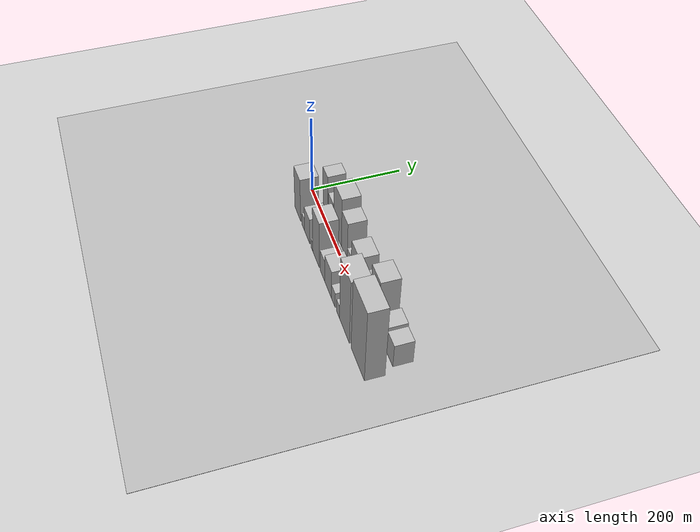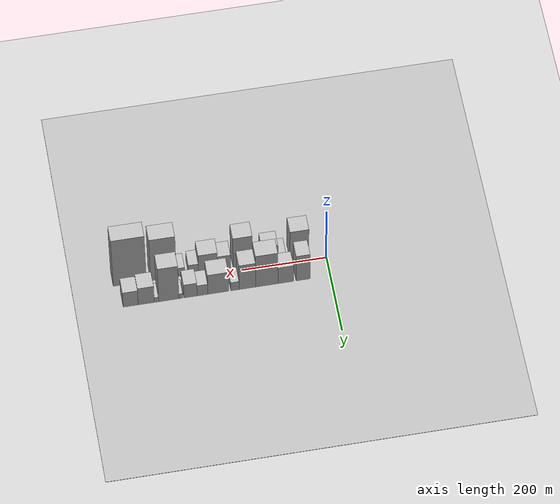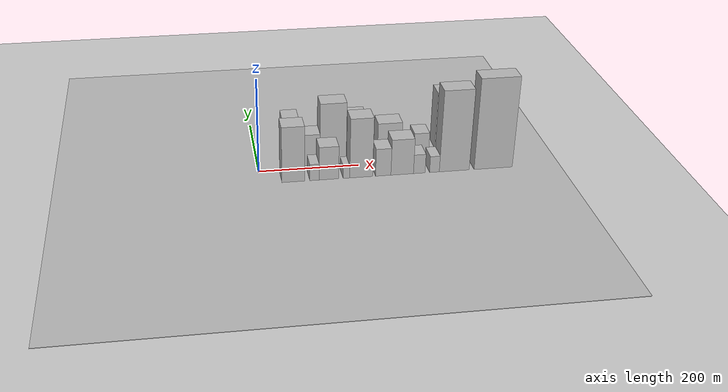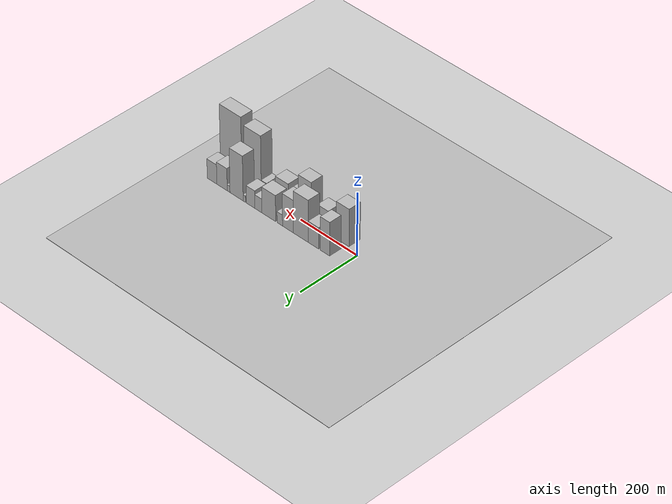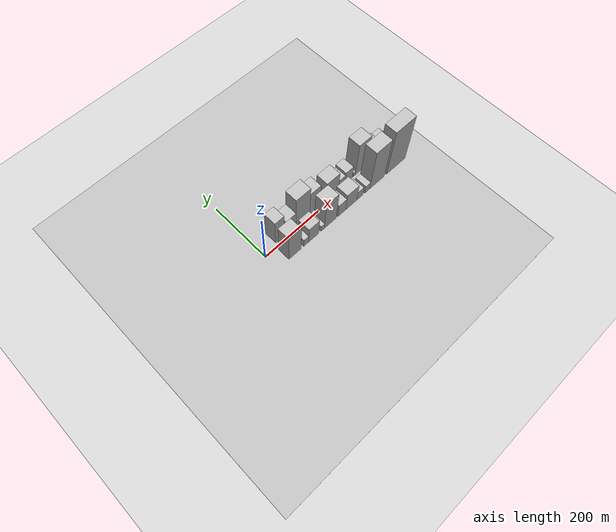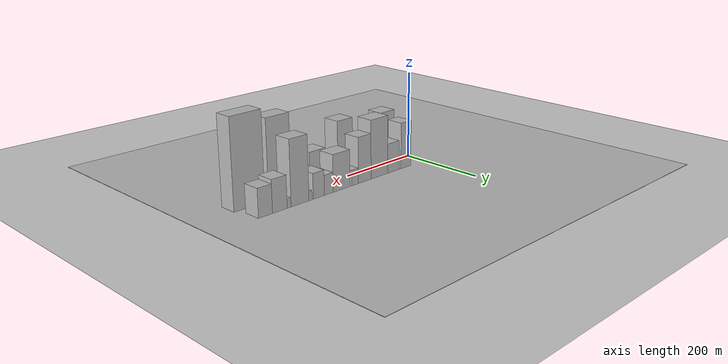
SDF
<?xml version="1.0" encoding="utf-8"?>

<sdf version="1.6">

   <world name="default">

      <gui fullscreen="0">

         <camera name="user_camera">

            <pose>-15 0 4.57585 0 0 0</pose>

            <view_controller>orbit</view_controller>

         </camera>

      </gui>

      <scene>

         <sky>

           <clouds>

             <speed>12</speed>

           </clouds>

         </sky>

         <ambient>0.4 0.4 0.4 1</ambient>

         <background>0.7 0.7 0.7 1</background>

         <shadows>1</shadows>

      </scene>

      <gravity>0 0 -9.8066</gravity>

      <magnetic_field>6e-06 2.3e-05 -4.2e-05</magnetic_field>

      <physics default="0" name="default_physics" type="ode">

         <ode>

            <solver>

               <type>quick</type>

               <iters>10</iters>

               <sor>1.0</sor>

               <use_dynamic_moi_rescaling>0</use_dynamic_moi_rescaling>

            </solver>

            <constraints>

               <cfm>0</cfm>

               <erp>0.2</erp>

               <contact_max_correcting_vel>100</contact_max_correcting_vel>

               <contact_surface_layer>0.001</contact_surface_layer>

            </constraints>

         </ode>

         <max_step_size>0.004</max_step_size>

         <real_time_factor>1</real_time_factor>

         <real_time_update_rate>250</real_time_update_rate>

      </physics>

      <light name="sun" type="directional">

         <cast_shadows>1</cast_shadows>

         <pose>0 0 10 0 0 0</pose>

         <diffuse>0.8 0.8 0.8 1</diffuse>

         <specular>0.2 0.2 0.2 1</specular>

         <attenuation>

            <range>1000</range>

            <constant>0.9</constant>

            <linear>0.01</linear>

            <quadratic>0.001</quadratic>

         </attenuation>

         <direction>-0.5 0.1 -0.9</direction>

      </light>

      <include>

         <name>ground_plane_1</name>

         <uri>model://HANNAS_ground_plane</uri>

         <pose>0 0 0  0 0 0</pose>

      </include>

      <include>

         <name>ground_plane_2</name>

         <uri>model://HANNAS_ground_plane</uri>

         <pose>100 0 0  0 0 0</pose>

      </include>

      <model name="building_1">

         <static>1</static>

         <pose frame="">64.3956 30.0000 0 0.000000 0.000000 1.570796</pose>

         <link name="link">

            <pose frame="">0 0 54.00 0 0 0</pose>

            <collision name="collision">

               <geometry>

                  <box>

                     <size>40.0000 32.7913 108.0000</size>

                  </box>

               </geometry>

               <max_contacts>10</max_contacts>

               <surface>

                  <contact>

                     <ode/>

                  </contact>

                  <bounce/>

                  <friction>

                     <torsional>

                        <ode/>

                     </torsional>

                     <ode/>

                  </friction>

               </surface>

            </collision>

            <visual name="visual">

               <cast_shadows>0</cast_shadows>

               <geometry>

                  <box>

                     <size>40.0000 32.7913 108.0000</size>

                  </box>

               </geometry>

               <material>

                  <script>

                     <uri>model://HANNAS_wall/materials/scripts</uri>

                     <uri>model://HANNAS_wall/materials/textures</uri>

                     <name>vrc/HANNAS_wall</name>

                  </script>

               </material>

            </visual>

            <self_collide>0</self_collide>

            <enable_wind>0</enable_wind>

            <kinematic>0</kinematic>

         </link>

      </model>

      <model name="building_2">

         <static>1</static>

         <pose frame="">105.2554 30.0000 0 0.000000 0.000000 1.570796</pose>

         <link name="link">

            <pose frame="">0 0 34.50 0 0 0</pose>

            <collision name="collision">

               <geometry>

                  <box>

                     <size>40.0000 36.9283 69.0000</size>

                  </box>

               </geometry>

               <max_contacts>10</max_contacts>

               <surface>

                  <contact>

                     <ode/>

                  </contact>

                  <bounce/>

                  <friction>

                     <torsional>

                        <ode/>

                     </torsional>

                     <ode/>

                  </friction>

               </surface>

            </collision>

            <visual name="visual">

               <cast_shadows>0</cast_shadows>

               <geometry>

                  <box>

                     <size>40.0000 36.9283 69.0000</size>

                  </box>

               </geometry>

               <material>

                  <script>

                     <uri>model://HANNAS_wall/materials/scripts</uri>

                     <uri>model://HANNAS_wall/materials/textures</uri>

                     <name>vrc/HANNAS_wall</name>

                  </script>

               </material>

            </visual>

            <self_collide>0</self_collide>

            <enable_wind>0</enable_wind>

            <kinematic>0</kinematic>

         </link>

      </model>

      <model name="building_3">

         <static>1</static>

         <pose frame="">150.1064 30.0000 0 0.000000 0.000000 1.570796</pose>

         <link name="link">

            <pose frame="">0 0 67.50 0 0 0</pose>

            <collision name="collision">

               <geometry>

                  <box>

                     <size>40.0000 52.7737 135.0000</size>

                  </box>

               </geometry>

               <max_contacts>10</max_contacts>

               <surface>

                  <contact>

                     <ode/>

                  </contact>

                  <bounce/>

                  <friction>

                     <torsional>

                        <ode/>

                     </torsional>

                     <ode/>

                  </friction>

               </surface>

            </collision>

            <visual name="visual">

               <cast_shadows>0</cast_shadows>

               <geometry>

                  <box>

                     <size>40.0000 52.7737 135.0000</size>

                  </box>

               </geometry>

               <material>

                  <script>

                     <uri>model://HANNAS_wall/materials/scripts</uri>

                     <uri>model://HANNAS_wall/materials/textures</uri>

                     <name>vrc/HANNAS_wall</name>

                  </script>

               </material>

            </visual>

            <self_collide>0</self_collide>

            <enable_wind>0</enable_wind>

            <kinematic>0</kinematic>

         </link>

      </model>

      <model name="building_4">

         <static>1</static>

         <pose frame="">195.9589 30.0000 0 0.000000 0.000000 1.570796</pose>

         <link name="link">

            <pose frame="">0 0 52.50 0 0 0</pose>

            <collision name="collision">

               <geometry>

                  <box>

                     <size>40.0000 38.9315 105.0000</size>

                  </box>

               </geometry>

               <max_contacts>10</max_contacts>

               <surface>

                  <contact>

                     <ode/>

                  </contact>

                  <bounce/>

                  <friction>

                     <torsional>

                        <ode/>

                     </torsional>

                     <ode/>

                  </friction>

               </surface>

            </collision>

            <visual name="visual">

               <cast_shadows>0</cast_shadows>

               <geometry>

                  <box>

                     <size>40.0000 38.9315 105.0000</size>

                  </box>

               </geometry>

               <material>

                  <script>

                     <uri>model://HANNAS_wall/materials/scripts</uri>

                     <uri>model://HANNAS_wall/materials/textures</uri>

                     <name>vrc/HANNAS_wall</name>

                  </script>

               </material>

            </visual>

            <self_collide>0</self_collide>

            <enable_wind>0</enable_wind>

            <kinematic>0</kinematic>

         </link>

      </model>

      <model name="building_5">

         <static>1</static>

         <pose frame="">225.2437 30.0000 0 0.000000 0.000000 1.570796</pose>

         <link name="link">

            <pose frame="">0 0 18.00 0 0 0</pose>

            <collision name="collision">

               <geometry>

                  <box>

                     <size>40.0000 19.6381 36.0000</size>

                  </box>

               </geometry>

               <max_contacts>10</max_contacts>

               <surface>

                  <contact>

                     <ode/>

                  </contact>

                  <bounce/>

                  <friction>

                     <torsional>

                        <ode/>

                     </torsional>

                     <ode/>

                  </friction>

               </surface>

            </collision>

            <visual name="visual">

               <cast_shadows>0</cast_shadows>

               <geometry>

                  <box>

                     <size>40.0000 19.6381 36.0000</size>

                  </box>

               </geometry>

               <material>

                  <script>

                     <uri>model://HANNAS_wall/materials/scripts</uri>

                     <uri>model://HANNAS_wall/materials/textures</uri>

                     <name>vrc/HANNAS_wall</name>

                  </script>

               </material>

            </visual>

            <self_collide>0</self_collide>

            <enable_wind>0</enable_wind>

            <kinematic>0</kinematic>

         </link>

      </model>

      <model name="building_6">

         <static>1</static>

         <pose frame="">264.6774 30.0000 0 0.000000 0.000000 1.570796</pose>

         <link name="link">

            <pose frame="">0 0 42.00 0 0 0</pose>

            <collision name="collision">

               <geometry>

                  <box>

                     <size>40.0000 49.2292 84.0000</size>

                  </box>

               </geometry>

               <max_contacts>10</max_contacts>

               <surface>

                  <contact>

                     <ode/>

                  </contact>

                  <bounce/>

                  <friction>

                     <torsional>

                        <ode/>

                     </torsional>

                     <ode/>

                  </friction>

               </surface>

            </collision>

            <visual name="visual">

               <cast_shadows>0</cast_shadows>

               <geometry>

                  <box>

                     <size>40.0000 49.2292 84.0000</size>

                  </box>

               </geometry>

               <material>

                  <script>

                     <uri>model://HANNAS_wall/materials/scripts</uri>

                     <uri>model://HANNAS_wall/materials/textures</uri>

                     <name>vrc/HANNAS_wall</name>

                  </script>

               </material>

            </visual>

            <self_collide>0</self_collide>

            <enable_wind>0</enable_wind>

            <kinematic>0</kinematic>

         </link>

      </model>

      <model name="building_7">

         <static>1</static>

         <pose frame="">301.9560 30.0000 0 0.000000 0.000000 1.570796</pose>

         <link name="link">

            <pose frame="">0 0 22.50 0 0 0</pose>

            <collision name="collision">

               <geometry>

                  <box>

                     <size>40.0000 25.3280 45.0000</size>

                  </box>

               </geometry>

               <max_contacts>10</max_contacts>

               <surface>

                  <contact>

                     <ode/>

                  </contact>

                  <bounce/>

                  <friction>

                     <torsional>

                        <ode/>

                     </torsional>

                     <ode/>

                  </friction>

               </surface>

            </collision>

            <visual name="visual">

               <cast_shadows>0</cast_shadows>

               <geometry>

                  <box>

                     <size>40.0000 25.3280 45.0000</size>

                  </box>

               </geometry>

               <material>

                  <script>

                     <uri>model://HANNAS_wall/materials/scripts</uri>

                     <uri>model://HANNAS_wall/materials/textures</uri>

                     <name>vrc/HANNAS_wall</name>

                  </script>

               </material>

            </visual>

            <self_collide>0</self_collide>

            <enable_wind>0</enable_wind>

            <kinematic>0</kinematic>

         </link>

      </model>

      <model name="building_8">

         <static>1</static>

         <pose frame="">330.1537 30.0000 0 0.000000 0.000000 1.570796</pose>

         <link name="link">

            <pose frame="">0 0 28.50 0 0 0</pose>

            <collision name="collision">

               <geometry>

                  <box>

                     <size>40.0000 31.0674 57.0000</size>

                  </box>

               </geometry>

               <max_contacts>10</max_contacts>

               <surface>

                  <contact>

                     <ode/>

                  </contact>

                  <bounce/>

                  <friction>

                     <torsional>

                        <ode/>

                     </torsional>

                     <ode/>

                  </friction>

               </surface>

            </collision>

            <visual name="visual">

               <cast_shadows>0</cast_shadows>

               <geometry>

                  <box>

                     <size>40.0000 31.0674 57.0000</size>

                  </box>

               </geometry>

               <material>

                  <script>

                     <uri>model://HANNAS_wall/materials/scripts</uri>

                     <uri>model://HANNAS_wall/materials/textures</uri>

                     <name>vrc/HANNAS_wall</name>

                  </script>

               </material>

            </visual>

            <self_collide>0</self_collide>

            <enable_wind>0</enable_wind>

            <kinematic>0</kinematic>

         </link>

      </model>

      <model name="building_9">

         <static>1</static>

         <pose frame="">353.0845 30.0000 0 0.000000 0.000000 1.570796</pose>

         <link name="link">

            <pose frame="">0 0 10.50 0 0 0</pose>

            <collision name="collision">

               <geometry>

                  <box>

                     <size>40.0000 8.7943 21.0000</size>

                  </box>

               </geometry>

               <max_contacts>10</max_contacts>

               <surface>

                  <contact>

                     <ode/>

                  </contact>

                  <bounce/>

                  <friction>

                     <torsional>

                        <ode/>

                     </torsional>

                     <ode/>

                  </friction>

               </surface>

            </collision>

            <visual name="visual">

               <cast_shadows>0</cast_shadows>

               <geometry>

                  <box>

                     <size>40.0000 8.7943 21.0000</size>

                  </box>

               </geometry>

               <material>

                  <script>

                     <uri>model://HANNAS_wall/materials/scripts</uri>

                     <uri>model://HANNAS_wall/materials/textures</uri>

                     <name>vrc/HANNAS_wall</name>

                  </script>

               </material>

            </visual>

            <self_collide>0</self_collide>

            <enable_wind>0</enable_wind>

            <kinematic>0</kinematic>

         </link>

      </model>

      <model name="building_10">

         <static>1</static>

         <pose frame="">381.4194 30.0000 0 0.000000 0.000000 1.570796</pose>

         <link name="link">

            <pose frame="">0 0 72.00 0 0 0</pose>

            <collision name="collision">

               <geometry>

                  <box>

                     <size>40.0000 47.8754 144.0000</size>

                  </box>

               </geometry>

               <max_contacts>10</max_contacts>

               <surface>

                  <contact>

                     <ode/>

                  </contact>

                  <bounce/>

                  <friction>

                     <torsional>

                        <ode/>

                     </torsional>

                     <ode/>

                  </friction>

               </surface>

            </collision>

            <visual name="visual">

               <cast_shadows>0</cast_shadows>

               <geometry>

                  <box>

                     <size>40.0000 47.8754 144.0000</size>

                  </box>

               </geometry>

               <material>

                  <script>

                     <uri>model://HANNAS_wall/materials/scripts</uri>

                     <uri>model://HANNAS_wall/materials/textures</uri>

                     <name>vrc/HANNAS_wall</name>

                  </script>

               </material>

            </visual>

            <self_collide>0</self_collide>

            <enable_wind>0</enable_wind>

            <kinematic>0</kinematic>

         </link>

      </model>

      <model name="building_11">

         <static>1</static>

         <pose frame="">410.4542 30.0000 0 0.000000 0.000000 1.570796</pose>

         <link name="link">

            <pose frame="">0 0 10.50 0 0 0</pose>

            <collision name="collision">

               <geometry>

                  <box>

                     <size>40.0000 10.1942 21.0000</size>

                  </box>

               </geometry>

               <max_contacts>10</max_contacts>

               <surface>

                  <contact>

                     <ode/>

                  </contact>

                  <bounce/>

                  <friction>

                     <torsional>

                        <ode/>

                     </torsional>

                     <ode/>

                  </friction>

               </surface>

            </collision>

            <visual name="visual">

               <cast_shadows>0</cast_shadows>

               <geometry>

                  <box>

                     <size>40.0000 10.1942 21.0000</size>

                  </box>

               </geometry>

               <material>

                  <script>

                     <uri>model://HANNAS_wall/materials/scripts</uri>

                     <uri>model://HANNAS_wall/materials/textures</uri>

                     <name>vrc/HANNAS_wall</name>

                  </script>

               </material>

            </visual>

            <self_collide>0</self_collide>

            <enable_wind>0</enable_wind>

            <kinematic>0</kinematic>

         </link>

      </model>

      <model name="building_12">

         <static>1</static>

         <pose frame="">434.4911 30.0000 0 0.000000 0.000000 1.570796</pose>

         <link name="link">

            <pose frame="">0 0 36.00 0 0 0</pose>

            <collision name="collision">

               <geometry>

                  <box>

                     <size>40.0000 37.8795 72.0000</size>

                  </box>

               </geometry>

               <max_contacts>10</max_contacts>

               <surface>

                  <contact>

                     <ode/>

                  </contact>

                  <bounce/>

                  <friction>

                     <torsional>

                        <ode/>

                     </torsional>

                     <ode/>

                  </friction>

               </surface>

            </collision>

            <visual name="visual">

               <cast_shadows>0</cast_shadows>

               <geometry>

                  <box>

                     <size>40.0000 37.8795 72.0000</size>

                  </box>

               </geometry>

               <material>

                  <script>

                     <uri>model://HANNAS_wall/materials/scripts</uri>

                     <uri>model://HANNAS_wall/materials/textures</uri>

                     <name>vrc/HANNAS_wall</name>

                  </script>

               </material>

            </visual>

            <self_collide>0</self_collide>

            <enable_wind>0</enable_wind>

            <kinematic>0</kinematic>

         </link>

      </model>

      <model name="building_13">

         <static>1</static>

         <pose frame="">471.1069 30.0000 0 0.000000 0.000000 1.570796</pose>

         <link name="link">

            <pose frame="">0 0 31.50 0 0 0</pose>

            <collision name="collision">

               <geometry>

                  <box>

                     <size>40.0000 35.3521 63.0000</size>

                  </box>

               </geometry>

               <max_contacts>10</max_contacts>

               <surface>

                  <contact>

                     <ode/>

                  </contact>

                  <bounce/>

                  <friction>

                     <torsional>

                        <ode/>

                     </torsional>

                     <ode/>

                  </friction>

               </surface>

            </collision>

            <visual name="visual">

               <cast_shadows>0</cast_shadows>

               <geometry>

                  <box>

                     <size>40.0000 35.3521 63.0000</size>

                  </box>

               </geometry>

               <material>

                  <script>

                     <uri>model://HANNAS_wall/materials/scripts</uri>

                     <uri>model://HANNAS_wall/materials/textures</uri>

                     <name>vrc/HANNAS_wall</name>

                  </script>

               </material>

            </visual>

            <self_collide>0</self_collide>

            <enable_wind>0</enable_wind>

            <kinematic>0</kinematic>

         </link>

      </model>

      <model name="building_14">

         <static>1</static>

         <pose frame="">62.3810 -30.0000 0 0.000000 0.000000 1.570796</pose>

         <link name="link">

            <pose frame="">0 0 60.00 0 0 0</pose>

            <collision name="collision">

               <geometry>

                  <box>

                     <size>40.0000 44.7620 120.0000</size>

                  </box>

               </geometry>

               <max_contacts>10</max_contacts>

               <surface>

                  <contact>

                     <ode/>

                  </contact>

                  <bounce/>

                  <friction>

                     <torsional>

                        <ode/>

                     </torsional>

                     <ode/>

                  </friction>

               </surface>

            </collision>

            <visual name="visual">

               <cast_shadows>0</cast_shadows>

               <geometry>

                  <box>

                     <size>40.0000 44.7620 120.0000</size>

                  </box>

               </geometry>

               <material>

                  <script>

                     <uri>model://HANNAS_wall/materials/scripts</uri>

                     <uri>model://HANNAS_wall/materials/textures</uri>

                     <name>vrc/HANNAS_wall</name>

                  </script>

               </material>

            </visual>

            <self_collide>0</self_collide>

            <enable_wind>0</enable_wind>

            <kinematic>0</kinematic>

         </link>

      </model>

      <model name="building_15">

         <static>1</static>

         <pose frame="">103.9170 -30.0000 0 0.000000 0.000000 1.570796</pose>

         <link name="link">

            <pose frame="">0 0 18.00 0 0 0</pose>

            <collision name="collision">

               <geometry>

                  <box>

                     <size>40.0000 18.3100 36.0000</size>

                  </box>

               </geometry>

               <max_contacts>10</max_contacts>

               <surface>

                  <contact>

                     <ode/>

                  </contact>

                  <bounce/>

                  <friction>

                     <torsional>

                        <ode/>

                     </torsional>

                     <ode/>

                  </friction>

               </surface>

            </collision>

            <visual name="visual">

               <cast_shadows>0</cast_shadows>

               <geometry>

                  <box>

                     <size>40.0000 18.3100 36.0000</size>

                  </box>

               </geometry>

               <material>

                  <script>

                     <uri>model://HANNAS_wall/materials/scripts</uri>

                     <uri>model://HANNAS_wall/materials/textures</uri>

                     <name>vrc/HANNAS_wall</name>

                  </script>

               </material>

            </visual>

            <self_collide>0</self_collide>

            <enable_wind>0</enable_wind>

            <kinematic>0</kinematic>

         </link>

      </model>

      <model name="building_16">

         <static>1</static>

         <pose frame="">132.3767 -30.0000 0 0.000000 0.000000 1.570796</pose>

         <link name="link">

            <pose frame="">0 0 36.00 0 0 0</pose>

            <collision name="collision">

               <geometry>

                  <box>

                     <size>40.0000 38.6094 72.0000</size>

                  </box>

               </geometry>

               <max_contacts>10</max_contacts>

               <surface>

                  <contact>

                     <ode/>

                  </contact>

                  <bounce/>

                  <friction>

                     <torsional>

                        <ode/>

                     </torsional>

                     <ode/>

                  </friction>

               </surface>

            </collision>

            <visual name="visual">

               <cast_shadows>0</cast_shadows>

               <geometry>

                  <box>

                     <size>40.0000 38.6094 72.0000</size>

                  </box>

               </geometry>

               <material>

                  <script>

                     <uri>model://HANNAS_wall/materials/scripts</uri>

                     <uri>model://HANNAS_wall/materials/textures</uri>

                     <name>vrc/HANNAS_wall</name>

                  </script>

               </material>

            </visual>

            <self_collide>0</self_collide>

            <enable_wind>0</enable_wind>

            <kinematic>0</kinematic>

         </link>

      </model>

      <model name="building_17">

         <static>1</static>

         <pose frame="">167.1080 -30.0000 0 0.000000 0.000000 1.570796</pose>

         <link name="link">

            <pose frame="">0 0 13.50 0 0 0</pose>

            <collision name="collision">

               <geometry>

                  <box>

                     <size>40.0000 12.8532 27.0000</size>

                  </box>

               </geometry>

               <max_contacts>10</max_contacts>

               <surface>

                  <contact>

                     <ode/>

                  </contact>

                  <bounce/>

                  <friction>

                     <torsional>

                        <ode/>

                     </torsional>

                     <ode/>

                  </friction>

               </surface>

            </collision>

            <visual name="visual">

               <cast_shadows>0</cast_shadows>

               <geometry>

                  <box>

                     <size>40.0000 12.8532 27.0000</size>

                  </box>

               </geometry>

               <material>

                  <script>

                     <uri>model://HANNAS_wall/materials/scripts</uri>

                     <uri>model://HANNAS_wall/materials/textures</uri>

                     <name>vrc/HANNAS_wall</name>

                  </script>

               </material>

            </visual>

            <self_collide>0</self_collide>

            <enable_wind>0</enable_wind>

            <kinematic>0</kinematic>

         </link>

      </model>

      <model name="building_18">

         <static>1</static>

         <pose frame="">196.3711 -30.0000 0 0.000000 0.000000 1.570796</pose>

         <link name="link">

            <pose frame="">0 0 64.50 0 0 0</pose>

            <collision name="collision">

               <geometry>

                  <box>

                     <size>40.0000 45.6732 129.0000</size>

                  </box>

               </geometry>

               <max_contacts>10</max_contacts>

               <surface>

                  <contact>

                     <ode/>

                  </contact>

                  <bounce/>

                  <friction>

                     <torsional>

                        <ode/>

                     </torsional>

                     <ode/>

                  </friction>

               </surface>

            </collision>

            <visual name="visual">

               <cast_shadows>0</cast_shadows>

               <geometry>

                  <box>

                     <size>40.0000 45.6732 129.0000</size>

                  </box>

               </geometry>

               <material>

                  <script>

                     <uri>model://HANNAS_wall/materials/scripts</uri>

                     <uri>model://HANNAS_wall/materials/textures</uri>

                     <name>vrc/HANNAS_wall</name>

                  </script>

               </material>

            </visual>

            <self_collide>0</self_collide>

            <enable_wind>0</enable_wind>

            <kinematic>0</kinematic>

         </link>

      </model>

      <model name="building_19">

         <static>1</static>

         <pose frame="">240.5587 -30.0000 0 0.000000 0.000000 1.570796</pose>

         <link name="link">

            <pose frame="">0 0 30.00 0 0 0</pose>

            <collision name="collision">

               <geometry>

                  <box>

                     <size>40.0000 30.7020 60.0000</size>

                  </box>

               </geometry>

               <max_contacts>10</max_contacts>

               <surface>

                  <contact>

                     <ode/>

                  </contact>

                  <bounce/>

                  <friction>

                     <torsional>

                        <ode/>

                     </torsional>

                     <ode/>

                  </friction>

               </surface>

            </collision>

            <visual name="visual">

               <cast_shadows>0</cast_shadows>

               <geometry>

                  <box>

                     <size>40.0000 30.7020 60.0000</size>

                  </box>

               </geometry>

               <material>

                  <script>

                     <uri>model://HANNAS_wall/materials/scripts</uri>

                     <uri>model://HANNAS_wall/materials/textures</uri>

                     <name>vrc/HANNAS_wall</name>

                  </script>

               </material>

            </visual>

            <self_collide>0</self_collide>

            <enable_wind>0</enable_wind>

            <kinematic>0</kinematic>

         </link>

      </model>

      <model name="building_20">

         <static>1</static>

         <pose frame="">278.6155 -30.0000 0 0.000000 0.000000 1.570796</pose>

         <link name="link">

            <pose frame="">0 0 39.00 0 0 0</pose>

            <collision name="collision">

               <geometry>

                  <box>

                     <size>40.0000 45.4116 78.0000</size>

                  </box>

               </geometry>

               <max_contacts>10</max_contacts>

               <surface>

                  <contact>

                     <ode/>

                  </contact>

                  <bounce/>

                  <friction>

                     <torsional>

                        <ode/>

                     </torsional>

                     <ode/>

                  </friction>

               </surface>

            </collision>

            <visual name="visual">

               <cast_shadows>0</cast_shadows>

               <geometry>

                  <box>

                     <size>40.0000 45.4116 78.0000</size>

                  </box>

               </geometry>

               <material>

                  <script>

                     <uri>model://HANNAS_wall/materials/scripts</uri>

                     <uri>model://HANNAS_wall/materials/textures</uri>

                     <name>vrc/HANNAS_wall</name>

                  </script>

               </material>

            </visual>

            <self_collide>0</self_collide>

            <enable_wind>0</enable_wind>

            <kinematic>0</kinematic>

         </link>

      </model>

      <model name="building_21">

         <static>1</static>

         <pose frame="">313.0868 -30.0000 0 0.000000 0.000000 1.570796</pose>

         <link name="link">

            <pose frame="">0 0 21.00 0 0 0</pose>

            <collision name="collision">

               <geometry>

                  <box>

                     <size>40.0000 23.5310 42.0000</size>

                  </box>

               </geometry>

               <max_contacts>10</max_contacts>

               <surface>

                  <contact>

                     <ode/>

                  </contact>

                  <bounce/>

                  <friction>

                     <torsional>

                        <ode/>

                     </torsional>

                     <ode/>

                  </friction>

               </surface>

            </collision>

            <visual name="visual">

               <cast_shadows>0</cast_shadows>

               <geometry>

                  <box>

                     <size>40.0000 23.5310 42.0000</size>

                  </box>

               </geometry>

               <material>

                  <script>

                     <uri>model://HANNAS_wall/materials/scripts</uri>

                     <uri>model://HANNAS_wall/materials/textures</uri>

                     <name>vrc/HANNAS_wall</name>

                  </script>

               </material>

            </visual>

            <self_collide>0</self_collide>

            <enable_wind>0</enable_wind>

            <kinematic>0</kinematic>

         </link>

      </model>

      <model name="building_22">

         <static>1</static>

         <pose frame="">343.7364 -30.0000 0 0.000000 0.000000 1.570796</pose>

         <link name="link">

            <pose frame="">0 0 18.00 0 0 0</pose>

            <collision name="collision">

               <geometry>

                  <box>

                     <size>40.0000 19.7683 36.0000</size>

                  </box>

               </geometry>

               <max_contacts>10</max_contacts>

               <surface>

                  <contact>

                     <ode/>

                  </contact>

                  <bounce/>

                  <friction>

                     <torsional>

                        <ode/>

                     </torsional>

                     <ode/>

                  </friction>

               </surface>

            </collision>

            <visual name="visual">

               <cast_shadows>0</cast_shadows>

               <geometry>

                  <box>

                     <size>40.0000 19.7683 36.0000</size>

                  </box>

               </geometry>

               <material>

                  <script>

                     <uri>model://HANNAS_wall/materials/scripts</uri>

                     <uri>model://HANNAS_wall/materials/textures</uri>

                     <name>vrc/HANNAS_wall</name>

                  </script>

               </material>

            </visual>

            <self_collide>0</self_collide>

            <enable_wind>0</enable_wind>

            <kinematic>0</kinematic>

         </link>

      </model>

      <model name="building_23">

         <static>1</static>

         <pose frame="">384.0472 -30.0000 0 0.000000 0.000000 1.570796</pose>

         <link name="link">

            <pose frame="">0 0 88.50 0 0 0</pose>

            <collision name="collision">

               <geometry>

                  <box>

                     <size>40.0000 60.8532 177.0000</size>

                  </box>

               </geometry>

               <max_contacts>10</max_contacts>

               <surface>

                  <contact>

                     <ode/>

                  </contact>

                  <bounce/>

                  <friction>

                     <torsional>

                        <ode/>

                     </torsional>

                     <ode/>

                  </friction>

               </surface>

            </collision>

            <visual name="visual">

               <cast_shadows>0</cast_shadows>

               <geometry>

                  <box>

                     <size>40.0000 60.8532 177.0000</size>

                  </box>

               </geometry>

               <material>

                  <script>

                     <uri>model://HANNAS_wall/materials/scripts</uri>

                     <uri>model://HANNAS_wall/materials/textures</uri>

                     <name>vrc/HANNAS_wall</name>

                  </script>

               </material>

            </visual>

            <self_collide>0</self_collide>

            <enable_wind>0</enable_wind>

            <kinematic>0</kinematic>

         </link>

      </model>

      <model name="building_24">

         <static>1</static>

         <pose frame="">463.6287 -30.0000 0 0.000000 0.000000 1.570796</pose>

         <link name="link">

            <pose frame="">0 0 99.00 0 0 0</pose>

            <collision name="collision">

               <geometry>

                  <box>

                     <size>40.0000 78.3097 198.0000</size>

                  </box>

               </geometry>

               <max_contacts>10</max_contacts>

               <surface>

                  <contact>

                     <ode/>

                  </contact>

                  <bounce/>

                  <friction>

                     <torsional>

                        <ode/>

                     </torsional>

                     <ode/>

                  </friction>

               </surface>

            </collision>

            <visual name="visual">

               <cast_shadows>0</cast_shadows>

               <geometry>

                  <box>

                     <size>40.0000 78.3097 198.0000</size>

                  </box>

               </geometry>

               <material>

                  <script>

                     <uri>model://HANNAS_wall/materials/scripts</uri>

                     <uri>model://HANNAS_wall/materials/textures</uri>

                     <name>vrc/HANNAS_wall</name>

                  </script>

               </material>

            </visual>

            <self_collide>0</self_collide>

            <enable_wind>0</enable_wind>

            <kinematic>0</kinematic>

         </link>

      </model>

   </world>

</sdf>

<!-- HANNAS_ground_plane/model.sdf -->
<sdf version="1.4">
<model name="HANNAS_ground_plane">
  <static>true</static>
    <link name="link">
      <collision name="collision">
        <geometry>
          <plane>
            <normal>0 0 1</normal>
            <size>1000 1000</size>
          </plane>
        </geometry>
        <surface>
          <friction>
            <ode>
              <mu>100</mu>
              <mu2>50</mu2>
            </ode>
          </friction>
        </surface>
      </collision>
      <visual name="visual">
        <cast_shadows>false</cast_shadows>
        <geometry>
          <plane>
            <normal>0 0 1</normal>
            <size>1000 1000</size>
          </plane>
        </geometry>
        <material>
          <script>
            <uri>model://HANNAS_ground_plane/materials/scripts/HANNAS_ground_plane.material</uri>
	    <uri>model://HANNAS_ground_plane/materials/textures</uri>
            <name>HANNASGroundPlane/Image</name>
          </script>
        </material>
      </visual>
    </link>
  </model>
</sdf>
